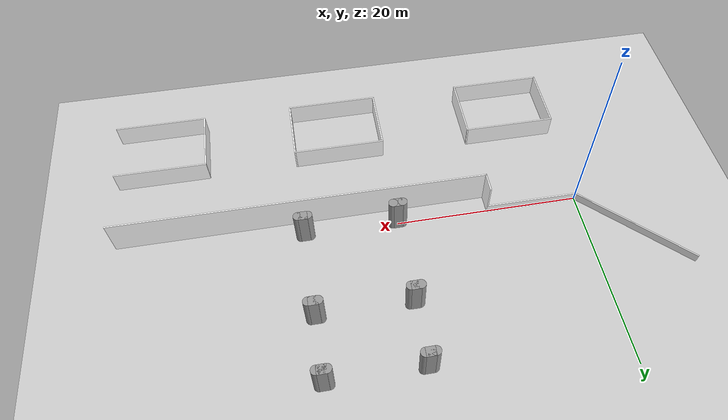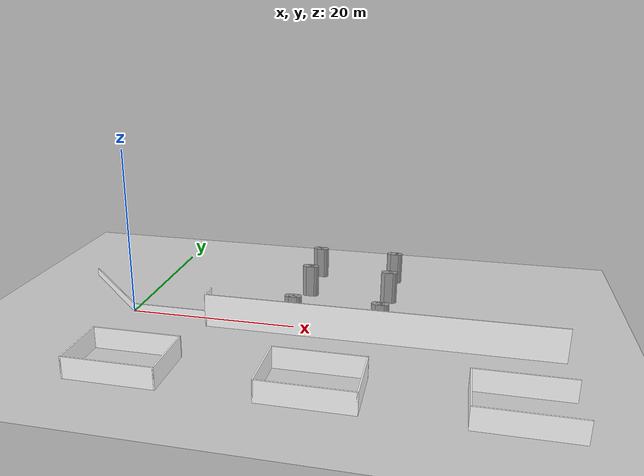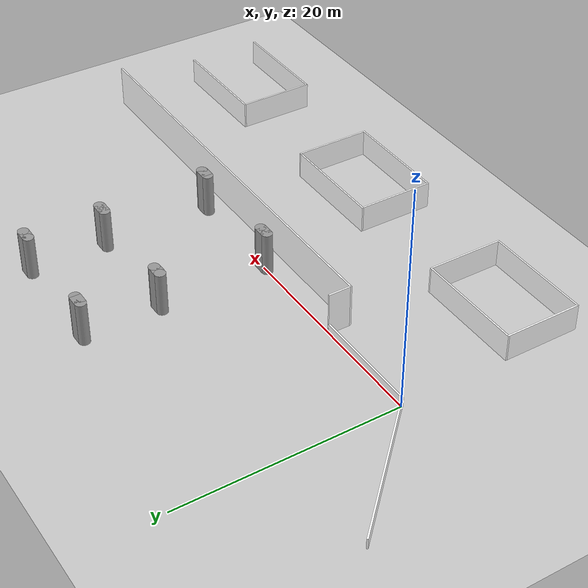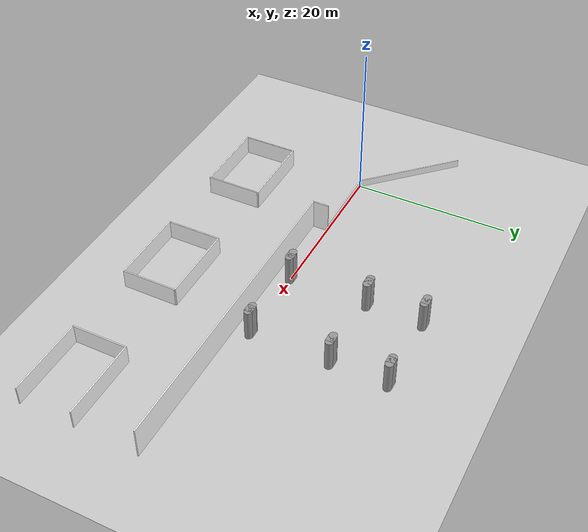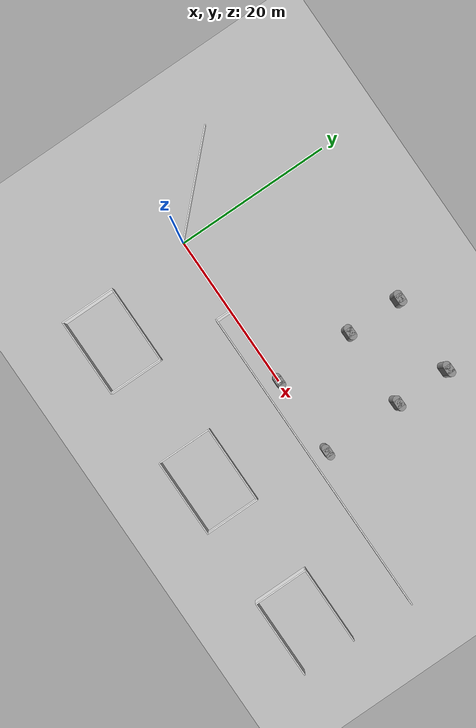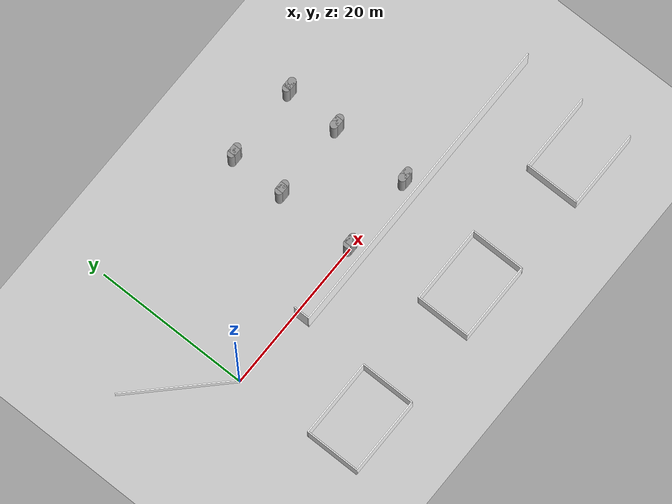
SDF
<sdf version="1.6">
 <world name="default">
  <model name="ground_plane">
   <static>1</static>
   <link name="link">
    <collision name="collision">
     <geometry><plane><normal>0 0 1</normal><size>100 100</size></plane></geometry>
     <surface><friction><ode><mu>100</mu><mu2>50</mu2></ode></friction></surface>
    </collision>
    <visual name="visual">
     <cast_shadows>0</cast_shadows>
     <geometry><plane><normal>0 0 1</normal><size>100 100</size></plane></geometry>
     <material>
      <script><uri>file://media/materials/scripts/gazebo.material</uri><name>Gazebo/Grey</name></script>
     </material>
    </visual>
   </link>
  </model>
  <model name="pillar_clone_6_clone_4">
   <link name="link_0">
    <inertial>
     <mass>1</mass>
     <inertia>
      <ixx>0.166667</ixx>
      <ixy>0</ixy>
      <ixz>0</ixz>
      <iyy>0.166667</iyy>
      <iyz>0</iyz>
      <izz>0.166667</izz>
     </inertia>
    </inertial>
    <kinematic>1</kinematic>
    <visual name="visual">
     <geometry><box><size>1 1 4</size></box></geometry>
     <material>
      <lighting>1</lighting>
      <script><uri>file://media/materials/scripts/gazebo.material</uri><name>Gazebo/Grey</name></script>
      <shader type="pixel"><normal_map>__default__</normal_map></shader>
      <ambient>0.3 0.3 0.3 1</ambient>
      <diffuse>0.7 0.7 0.7 1</diffuse>
      <specular>0.01 0.01 0.01 1</specular>
      <emissive>0 0 0 1</emissive>
     </material>
    </visual>
    <collision name="collision">
     <geometry><box><size>1 1 4</size></box></geometry>
     <surface>
      <friction>
       <ode><mu>1</mu><mu2>1</mu2><fdir1>0 0 0</fdir1><slip1>0</slip1><slip2>0</slip2></ode>
       <torsional>
        <coefficient>1</coefficient>
        <patch_radius>0</patch_radius>
        <surface_radius>0</surface_radius>
        <use_patch_radius>1</use_patch_radius>
        <ode><slip>0</slip></ode>
       </torsional>
      </friction>
      <bounce><restitution_coefficient>0</restitution_coefficient><threshold>1e+06</threshold></bounce>
      <contact>
       <collide_without_contact>0</collide_without_contact>
       <collide_without_contact_bitmask>1</collide_without_contact_bitmask>
       <collide_bitmask>1</collide_bitmask>
       <ode>
        <soft_cfm>0</soft_cfm>
        <soft_erp>0.2</soft_erp>
        <kp>1e+13</kp>
        <kd>1</kd>
        <max_vel>0.01</max_vel>
        <min_depth>0</min_depth>
       </ode>
       <bullet>
        <split_impulse>1</split_impulse>
        <split_impulse_penetration_threshold>-0.01</split_impulse_penetration_threshold>
        <soft_cfm>0</soft_cfm>
        <soft_erp>0.2</soft_erp>
        <kp>1e+13</kp>
        <kd>1</kd>
       </bullet>
      </contact>
     </surface>
    </collision>
   </link>
   <link name="link_1">
    <inertial>
     <mass>1</mass>
     <inertia><ixx>0.145833</ixx><ixy>0</ixy><ixz>0</ixz><iyy>0.145833</iyy><iyz>0</iyz><izz>0.125</izz></inertia>
    </inertial>
    <pose>-0.5 0 0 0 -0 0</pose>
    <kinematic>1</kinematic>
    <visual name="visual">
     <geometry><cylinder><radius>0.5</radius><length>4</length></cylinder></geometry>
     <material>
      <lighting>1</lighting>
      <script><uri>file://media/materials/scripts/gazebo.material</uri><name>Gazebo/Grey</name></script>
      <shader type="pixel"><normal_map>__default__</normal_map></shader>
      <ambient>0.3 0.3 0.3 1</ambient>
      <diffuse>0.7 0.7 0.7 1</diffuse>
      <specular>0.01 0.01 0.01 1</specular>
      <emissive>0 0 0 1</emissive>
     </material>
    </visual>
    <collision name="collision">
     <geometry><cylinder><radius>0.5</radius><length>4</length></cylinder></geometry>
     <surface>
      <friction>
       <ode><mu>1</mu><mu2>1</mu2><fdir1>0 0 0</fdir1><slip1>0</slip1><slip2>0</slip2></ode>
       <torsional>
        <coefficient>1</coefficient>
        <patch_radius>0</patch_radius>
        <surface_radius>0</surface_radius>
        <use_patch_radius>1</use_patch_radius>
        <ode><slip>0</slip></ode>
       </torsional>
      </friction>
      <bounce><restitution_coefficient>0</restitution_coefficient><threshold>1e+06</threshold></bounce>
      <contact>
       <collide_without_contact>0</collide_without_contact>
       <collide_without_contact_bitmask>1</collide_without_contact_bitmask>
       <collide_bitmask>1</collide_bitmask>
       <ode>
        <soft_cfm>0</soft_cfm>
        <soft_erp>0.2</soft_erp>
        <kp>1e+13</kp>
        <kd>1</kd>
        <max_vel>0.01</max_vel>
        <min_depth>0</min_depth>
       </ode>
       <bullet>
        <split_impulse>1</split_impulse>
        <split_impulse_penetration_threshold>-0.01</split_impulse_penetration_threshold>
        <soft_cfm>0</soft_cfm>
        <soft_erp>0.2</soft_erp>
        <kp>1e+13</kp>
        <kd>1</kd>
       </bullet>
      </contact>
     </surface>
    </collision>
   </link>
   <link name="link_2">
    <inertial>
     <mass>1</mass>
     <inertia><ixx>0.145833</ixx><ixy>0</ixy><ixz>0</ixz><iyy>0.145833</iyy><iyz>0</iyz><izz>0.125</izz></inertia>
    </inertial>
    <pose>0.5 0 0 0 -0 0</pose>
    <kinematic>1</kinematic>
    <visual name="visual">
     <geometry><cylinder><radius>0.5</radius><length>4</length></cylinder></geometry>
     <material>
      <lighting>1</lighting>
      <script><uri>file://media/materials/scripts/gazebo.material</uri><name>Gazebo/Grey</name></script>
      <shader type="pixel"><normal_map>__default__</normal_map></shader>
      <ambient>0.3 0.3 0.3 1</ambient>
      <diffuse>0.7 0.7 0.7 1</diffuse>
      <specular>0.01 0.01 0.01 1</specular>
      <emissive>0 0 0 1</emissive>
     </material>
    </visual>
    <collision name="collision">
     <geometry><cylinder><radius>0.5</radius><length>4</length></cylinder></geometry>
     <surface>
      <friction>
       <ode><mu>1</mu><mu2>1</mu2><fdir1>0 0 0</fdir1><slip1>0</slip1><slip2>0</slip2></ode>
       <torsional>
        <coefficient>1</coefficient>
        <patch_radius>0</patch_radius>
        <surface_radius>0</surface_radius>
        <use_patch_radius>1</use_patch_radius>
        <ode><slip>0</slip></ode>
       </torsional>
      </friction>
      <bounce><restitution_coefficient>0</restitution_coefficient><threshold>1e+06</threshold></bounce>
      <contact>
       <collide_without_contact>0</collide_without_contact>
       <collide_without_contact_bitmask>1</collide_without_contact_bitmask>
       <collide_bitmask>1</collide_bitmask>
       <ode>
        <soft_cfm>0</soft_cfm>
        <soft_erp>0.2</soft_erp>
        <kp>1e+13</kp>
        <kd>1</kd>
        <max_vel>0.01</max_vel>
        <min_depth>0</min_depth>
       </ode>
       <bullet>
        <split_impulse>1</split_impulse>
        <split_impulse_penetration_threshold>-0.01</split_impulse_penetration_threshold>
        <soft_cfm>0</soft_cfm>
        <soft_erp>0.2</soft_erp>
        <kp>1e+13</kp>
        <kd>1</kd>
       </bullet>
      </contact>
     </surface>
    </collision>
   </link>
   <static>1</static>
   <pose>20 0 2 0 -0 0</pose>
  </model>
  <model name="pillar_clone_6_clone_5">
   <link name="link_0">
    <inertial>
     <mass>1</mass>
     <inertia>
      <ixx>0.166667</ixx>
      <ixy>0</ixy>
      <ixz>0</ixz>
      <iyy>0.166667</iyy>
      <iyz>0</iyz>
      <izz>0.166667</izz>
     </inertia>
    </inertial>
    <kinematic>1</kinematic>
    <visual name="visual">
     <geometry><box><size>1 1 4</size></box></geometry>
     <material>
      <lighting>1</lighting>
      <script><uri>file://media/materials/scripts/gazebo.material</uri><name>Gazebo/Grey</name></script>
      <shader type="pixel"><normal_map>__default__</normal_map></shader>
      <ambient>0.3 0.3 0.3 1</ambient>
      <diffuse>0.7 0.7 0.7 1</diffuse>
      <specular>0.01 0.01 0.01 1</specular>
      <emissive>0 0 0 1</emissive>
     </material>
    </visual>
    <collision name="collision">
     <geometry><box><size>1 1 4</size></box></geometry>
     <surface>
      <friction>
       <ode><mu>1</mu><mu2>1</mu2><fdir1>0 0 0</fdir1><slip1>0</slip1><slip2>0</slip2></ode>
       <torsional>
        <coefficient>1</coefficient>
        <patch_radius>0</patch_radius>
        <surface_radius>0</surface_radius>
        <use_patch_radius>1</use_patch_radius>
        <ode><slip>0</slip></ode>
       </torsional>
      </friction>
      <bounce><restitution_coefficient>0</restitution_coefficient><threshold>1e+06</threshold></bounce>
      <contact>
       <collide_without_contact>0</collide_without_contact>
       <collide_without_contact_bitmask>1</collide_without_contact_bitmask>
       <collide_bitmask>1</collide_bitmask>
       <ode>
        <soft_cfm>0</soft_cfm>
        <soft_erp>0.2</soft_erp>
        <kp>1e+13</kp>
        <kd>1</kd>
        <max_vel>0.01</max_vel>
        <min_depth>0</min_depth>
       </ode>
       <bullet>
        <split_impulse>1</split_impulse>
        <split_impulse_penetration_threshold>-0.01</split_impulse_penetration_threshold>
        <soft_cfm>0</soft_cfm>
        <soft_erp>0.2</soft_erp>
        <kp>1e+13</kp>
        <kd>1</kd>
       </bullet>
      </contact>
     </surface>
    </collision>
   </link>
   <link name="link_1">
    <inertial>
     <mass>1</mass>
     <inertia><ixx>0.145833</ixx><ixy>0</ixy><ixz>0</ixz><iyy>0.145833</iyy><iyz>0</iyz><izz>0.125</izz></inertia>
    </inertial>
    <pose>-0.5 0 0 0 -0 0</pose>
    <kinematic>1</kinematic>
    <visual name="visual">
     <geometry><cylinder><radius>0.5</radius><length>4</length></cylinder></geometry>
     <material>
      <lighting>1</lighting>
      <script><uri>file://media/materials/scripts/gazebo.material</uri><name>Gazebo/Grey</name></script>
      <shader type="pixel"><normal_map>__default__</normal_map></shader>
      <ambient>0.3 0.3 0.3 1</ambient>
      <diffuse>0.7 0.7 0.7 1</diffuse>
      <specular>0.01 0.01 0.01 1</specular>
      <emissive>0 0 0 1</emissive>
     </material>
    </visual>
    <collision name="collision">
     <geometry><cylinder><radius>0.5</radius><length>4</length></cylinder></geometry>
     <surface>
      <friction>
       <ode><mu>1</mu><mu2>1</mu2><fdir1>0 0 0</fdir1><slip1>0</slip1><slip2>0</slip2></ode>
       <torsional>
        <coefficient>1</coefficient>
        <patch_radius>0</patch_radius>
        <surface_radius>0</surface_radius>
        <use_patch_radius>1</use_patch_radius>
        <ode><slip>0</slip></ode>
       </torsional>
      </friction>
      <bounce><restitution_coefficient>0</restitution_coefficient><threshold>1e+06</threshold></bounce>
      <contact>
       <collide_without_contact>0</collide_without_contact>
       <collide_without_contact_bitmask>1</collide_without_contact_bitmask>
       <collide_bitmask>1</collide_bitmask>
       <ode>
        <soft_cfm>0</soft_cfm>
        <soft_erp>0.2</soft_erp>
        <kp>1e+13</kp>
        <kd>1</kd>
        <max_vel>0.01</max_vel>
        <min_depth>0</min_depth>
       </ode>
       <bullet>
        <split_impulse>1</split_impulse>
        <split_impulse_penetration_threshold>-0.01</split_impulse_penetration_threshold>
        <soft_cfm>0</soft_cfm>
        <soft_erp>0.2</soft_erp>
        <kp>1e+13</kp>
        <kd>1</kd>
       </bullet>
      </contact>
     </surface>
    </collision>
   </link>
   <link name="link_2">
    <inertial>
     <mass>1</mass>
     <inertia><ixx>0.145833</ixx><ixy>0</ixy><ixz>0</ixz><iyy>0.145833</iyy><iyz>0</iyz><izz>0.125</izz></inertia>
    </inertial>
    <pose>0.5 0 0 0 -0 0</pose>
    <kinematic>1</kinematic>
    <visual name="visual">
     <geometry><cylinder><radius>0.5</radius><length>4</length></cylinder></geometry>
     <material>
      <lighting>1</lighting>
      <script><uri>file://media/materials/scripts/gazebo.material</uri><name>Gazebo/Grey</name></script>
      <shader type="pixel"><normal_map>__default__</normal_map></shader>
      <ambient>0.3 0.3 0.3 1</ambient>
      <diffuse>0.7 0.7 0.7 1</diffuse>
      <specular>0.01 0.01 0.01 1</specular>
      <emissive>0 0 0 1</emissive>
     </material>
    </visual>
    <collision name="collision">
     <geometry><cylinder><radius>0.5</radius><length>4</length></cylinder></geometry>
     <surface>
      <friction>
       <ode><mu>1</mu><mu2>1</mu2><fdir1>0 0 0</fdir1><slip1>0</slip1><slip2>0</slip2></ode>
       <torsional>
        <coefficient>1</coefficient>
        <patch_radius>0</patch_radius>
        <surface_radius>0</surface_radius>
        <use_patch_radius>1</use_patch_radius>
        <ode><slip>0</slip></ode>
       </torsional>
      </friction>
      <bounce><restitution_coefficient>0</restitution_coefficient><threshold>1e+06</threshold></bounce>
      <contact>
       <collide_without_contact>0</collide_without_contact>
       <collide_without_contact_bitmask>1</collide_without_contact_bitmask>
       <collide_bitmask>1</collide_bitmask>
       <ode>
        <soft_cfm>0</soft_cfm>
        <soft_erp>0.2</soft_erp>
        <kp>1e+13</kp>
        <kd>1</kd>
        <max_vel>0.01</max_vel>
        <min_depth>0</min_depth>
       </ode>
       <bullet>
        <split_impulse>1</split_impulse>
        <split_impulse_penetration_threshold>-0.01</split_impulse_penetration_threshold>
        <soft_cfm>0</soft_cfm>
        <soft_erp>0.2</soft_erp>
        <kp>1e+13</kp>
        <kd>1</kd>
       </bullet>
      </contact>
     </surface>
    </collision>
   </link>
   <static>1</static>
   <pose>30 0 2 0 -0 0</pose>
  </model>
  <model name="pillar_clone_6_clone_18">
   <link name="link_0">
    <inertial>
     <mass>1</mass>
     <inertia>
      <ixx>0.166667</ixx>
      <ixy>0</ixy>
      <ixz>0</ixz>
      <iyy>0.166667</iyy>
      <iyz>0</iyz>
      <izz>0.166667</izz>
     </inertia>
    </inertial>
    <kinematic>1</kinematic>
    <visual name="visual">
     <geometry><box><size>1 1 4</size></box></geometry>
     <material>
      <lighting>1</lighting>
      <script><uri>file://media/materials/scripts/gazebo.material</uri><name>Gazebo/Grey</name></script>
      <shader type="pixel"><normal_map>__default__</normal_map></shader>
      <ambient>0.3 0.3 0.3 1</ambient>
      <diffuse>0.7 0.7 0.7 1</diffuse>
      <specular>0.01 0.01 0.01 1</specular>
      <emissive>0 0 0 1</emissive>
     </material>
    </visual>
    <collision name="collision">
     <geometry><box><size>1 1 4</size></box></geometry>
     <surface>
      <friction>
       <ode><mu>1</mu><mu2>1</mu2><fdir1>0 0 0</fdir1><slip1>0</slip1><slip2>0</slip2></ode>
       <torsional>
        <coefficient>1</coefficient>
        <patch_radius>0</patch_radius>
        <surface_radius>0</surface_radius>
        <use_patch_radius>1</use_patch_radius>
        <ode><slip>0</slip></ode>
       </torsional>
      </friction>
      <bounce><restitution_coefficient>0</restitution_coefficient><threshold>1e+06</threshold></bounce>
      <contact>
       <collide_without_contact>0</collide_without_contact>
       <collide_without_contact_bitmask>1</collide_without_contact_bitmask>
       <collide_bitmask>1</collide_bitmask>
       <ode>
        <soft_cfm>0</soft_cfm>
        <soft_erp>0.2</soft_erp>
        <kp>1e+13</kp>
        <kd>1</kd>
        <max_vel>0.01</max_vel>
        <min_depth>0</min_depth>
       </ode>
       <bullet>
        <split_impulse>1</split_impulse>
        <split_impulse_penetration_threshold>-0.01</split_impulse_penetration_threshold>
        <soft_cfm>0</soft_cfm>
        <soft_erp>0.2</soft_erp>
        <kp>1e+13</kp>
        <kd>1</kd>
       </bullet>
      </contact>
     </surface>
    </collision>
   </link>
   <link name="link_1">
    <inertial>
     <mass>1</mass>
     <inertia><ixx>0.145833</ixx><ixy>0</ixy><ixz>0</ixz><iyy>0.145833</iyy><iyz>0</iyz><izz>0.125</izz></inertia>
    </inertial>
    <pose>-0.5 0 0 0 -0 0</pose>
    <kinematic>1</kinematic>
    <visual name="visual">
     <geometry><cylinder><radius>0.5</radius><length>4</length></cylinder></geometry>
     <material>
      <lighting>1</lighting>
      <script><uri>file://media/materials/scripts/gazebo.material</uri><name>Gazebo/Grey</name></script>
      <shader type="pixel"><normal_map>__default__</normal_map></shader>
      <ambient>0.3 0.3 0.3 1</ambient>
      <diffuse>0.7 0.7 0.7 1</diffuse>
      <specular>0.01 0.01 0.01 1</specular>
      <emissive>0 0 0 1</emissive>
     </material>
    </visual>
    <collision name="collision">
     <geometry><cylinder><radius>0.5</radius><length>4</length></cylinder></geometry>
     <surface>
      <friction>
       <ode><mu>1</mu><mu2>1</mu2><fdir1>0 0 0</fdir1><slip1>0</slip1><slip2>0</slip2></ode>
       <torsional>
        <coefficient>1</coefficient>
        <patch_radius>0</patch_radius>
        <surface_radius>0</surface_radius>
        <use_patch_radius>1</use_patch_radius>
        <ode><slip>0</slip></ode>
       </torsional>
      </friction>
      <bounce><restitution_coefficient>0</restitution_coefficient><threshold>1e+06</threshold></bounce>
      <contact>
       <collide_without_contact>0</collide_without_contact>
       <collide_without_contact_bitmask>1</collide_without_contact_bitmask>
       <collide_bitmask>1</collide_bitmask>
       <ode>
        <soft_cfm>0</soft_cfm>
        <soft_erp>0.2</soft_erp>
        <kp>1e+13</kp>
        <kd>1</kd>
        <max_vel>0.01</max_vel>
        <min_depth>0</min_depth>
       </ode>
       <bullet>
        <split_impulse>1</split_impulse>
        <split_impulse_penetration_threshold>-0.01</split_impulse_penetration_threshold>
        <soft_cfm>0</soft_cfm>
        <soft_erp>0.2</soft_erp>
        <kp>1e+13</kp>
        <kd>1</kd>
       </bullet>
      </contact>
     </surface>
    </collision>
   </link>
   <link name="link_2">
    <inertial>
     <mass>1</mass>
     <inertia><ixx>0.145833</ixx><ixy>0</ixy><ixz>0</ixz><iyy>0.145833</iyy><iyz>0</iyz><izz>0.125</izz></inertia>
    </inertial>
    <pose>0.5 0 0 0 -0 0</pose>
    <kinematic>1</kinematic>
    <visual name="visual">
     <geometry><cylinder><radius>0.5</radius><length>4</length></cylinder></geometry>
     <material>
      <lighting>1</lighting>
      <script><uri>file://media/materials/scripts/gazebo.material</uri><name>Gazebo/Grey</name></script>
      <shader type="pixel"><normal_map>__default__</normal_map></shader>
      <ambient>0.3 0.3 0.3 1</ambient>
      <diffuse>0.7 0.7 0.7 1</diffuse>
      <specular>0.01 0.01 0.01 1</specular>
      <emissive>0 0 0 1</emissive>
     </material>
    </visual>
    <collision name="collision">
     <geometry><cylinder><radius>0.5</radius><length>4</length></cylinder></geometry>
     <surface>
      <friction>
       <ode><mu>1</mu><mu2>1</mu2><fdir1>0 0 0</fdir1><slip1>0</slip1><slip2>0</slip2></ode>
       <torsional>
        <coefficient>1</coefficient>
        <patch_radius>0</patch_radius>
        <surface_radius>0</surface_radius>
        <use_patch_radius>1</use_patch_radius>
        <ode><slip>0</slip></ode>
       </torsional>
      </friction>
      <bounce><restitution_coefficient>0</restitution_coefficient><threshold>1e+06</threshold></bounce>
      <contact>
       <collide_without_contact>0</collide_without_contact>
       <collide_without_contact_bitmask>1</collide_without_contact_bitmask>
       <collide_bitmask>1</collide_bitmask>
       <ode>
        <soft_cfm>0</soft_cfm>
        <soft_erp>0.2</soft_erp>
        <kp>1e+13</kp>
        <kd>1</kd>
        <max_vel>0.01</max_vel>
        <min_depth>0</min_depth>
       </ode>
       <bullet>
        <split_impulse>1</split_impulse>
        <split_impulse_penetration_threshold>-0.01</split_impulse_penetration_threshold>
        <soft_cfm>0</soft_cfm>
        <soft_erp>0.2</soft_erp>
        <kp>1e+13</kp>
        <kd>1</kd>
       </bullet>
      </contact>
     </surface>
    </collision>
   </link>
   <static>1</static>
   <pose>20 10 2 0 -0 0</pose>
  </model>
  <model name="pillar_clone_6_clone_19">
   <link name="link_0">
    <inertial>
     <mass>1</mass>
     <inertia>
      <ixx>0.166667</ixx>
      <ixy>0</ixy>
      <ixz>0</ixz>
      <iyy>0.166667</iyy>
      <iyz>0</iyz>
      <izz>0.166667</izz>
     </inertia>
    </inertial>
    <kinematic>1</kinematic>
    <visual name="visual">
     <geometry><box><size>1 1 4</size></box></geometry>
     <material>
      <lighting>1</lighting>
      <script><uri>file://media/materials/scripts/gazebo.material</uri><name>Gazebo/Grey</name></script>
      <shader type="pixel"><normal_map>__default__</normal_map></shader>
      <ambient>0.3 0.3 0.3 1</ambient>
      <diffuse>0.7 0.7 0.7 1</diffuse>
      <specular>0.01 0.01 0.01 1</specular>
      <emissive>0 0 0 1</emissive>
     </material>
    </visual>
    <collision name="collision">
     <geometry><box><size>1 1 4</size></box></geometry>
     <surface>
      <friction>
       <ode><mu>1</mu><mu2>1</mu2><fdir1>0 0 0</fdir1><slip1>0</slip1><slip2>0</slip2></ode>
       <torsional>
        <coefficient>1</coefficient>
        <patch_radius>0</patch_radius>
        <surface_radius>0</surface_radius>
        <use_patch_radius>1</use_patch_radius>
        <ode><slip>0</slip></ode>
       </torsional>
      </friction>
      <bounce><restitution_coefficient>0</restitution_coefficient><threshold>1e+06</threshold></bounce>
      <contact>
       <collide_without_contact>0</collide_without_contact>
       <collide_without_contact_bitmask>1</collide_without_contact_bitmask>
       <collide_bitmask>1</collide_bitmask>
       <ode>
        <soft_cfm>0</soft_cfm>
        <soft_erp>0.2</soft_erp>
        <kp>1e+13</kp>
        <kd>1</kd>
        <max_vel>0.01</max_vel>
        <min_depth>0</min_depth>
       </ode>
       <bullet>
        <split_impulse>1</split_impulse>
        <split_impulse_penetration_threshold>-0.01</split_impulse_penetration_threshold>
        <soft_cfm>0</soft_cfm>
        <soft_erp>0.2</soft_erp>
        <kp>1e+13</kp>
        <kd>1</kd>
       </bullet>
      </contact>
     </surface>
    </collision>
   </link>
   <link name="link_1">
    <inertial>
     <mass>1</mass>
     <inertia><ixx>0.145833</ixx><ixy>0</ixy><ixz>0</ixz><iyy>0.145833</iyy><iyz>0</iyz><izz>0.125</izz></inertia>
    </inertial>
    <pose>-0.5 0 0 0 -0 0</pose>
    <kinematic>1</kinematic>
    <visual name="visual">
     <geometry><cylinder><radius>0.5</radius><length>4</length></cylinder></geometry>
     <material>
      <lighting>1</lighting>
      <script><uri>file://media/materials/scripts/gazebo.material</uri><name>Gazebo/Grey</name></script>
      <shader type="pixel"><normal_map>__default__</normal_map></shader>
      <ambient>0.3 0.3 0.3 1</ambient>
      <diffuse>0.7 0.7 0.7 1</diffuse>
      <specular>0.01 0.01 0.01 1</specular>
      <emissive>0 0 0 1</emissive>
     </material>
    </visual>
    <collision name="collision">
     <geometry><cylinder><radius>0.5</radius><length>4</length></cylinder></geometry>
     <surface>
      <friction>
       <ode><mu>1</mu><mu2>1</mu2><fdir1>0 0 0</fdir1><slip1>0</slip1><slip2>0</slip2></ode>
       <torsional>
        <coefficient>1</coefficient>
        <patch_radius>0</patch_radius>
        <surface_radius>0</surface_radius>
        <use_patch_radius>1</use_patch_radius>
        <ode><slip>0</slip></ode>
       </torsional>
      </friction>
      <bounce><restitution_coefficient>0</restitution_coefficient><threshold>1e+06</threshold></bounce>
      <contact>
       <collide_without_contact>0</collide_without_contact>
       <collide_without_contact_bitmask>1</collide_without_contact_bitmask>
       <collide_bitmask>1</collide_bitmask>
       <ode>
        <soft_cfm>0</soft_cfm>
        <soft_erp>0.2</soft_erp>
        <kp>1e+13</kp>
        <kd>1</kd>
        <max_vel>0.01</max_vel>
        <min_depth>0</min_depth>
       </ode>
       <bullet>
        <split_impulse>1</split_impulse>
        <split_impulse_penetration_threshold>-0.01</split_impulse_penetration_threshold>
        <soft_cfm>0</soft_cfm>
        <soft_erp>0.2</soft_erp>
        <kp>1e+13</kp>
        <kd>1</kd>
       </bullet>
      </contact>
     </surface>
    </collision>
   </link>
   <link name="link_2">
    <inertial>
     <mass>1</mass>
     <inertia><ixx>0.145833</ixx><ixy>0</ixy><ixz>0</ixz><iyy>0.145833</iyy><iyz>0</iyz><izz>0.125</izz></inertia>
    </inertial>
    <pose>0.5 0 0 0 -0 0</pose>
    <kinematic>1</kinematic>
    <visual name="visual">
     <geometry><cylinder><radius>0.5</radius><length>4</length></cylinder></geometry>
     <material>
      <lighting>1</lighting>
      <script><uri>file://media/materials/scripts/gazebo.material</uri><name>Gazebo/Grey</name></script>
      <shader type="pixel"><normal_map>__default__</normal_map></shader>
      <ambient>0.3 0.3 0.3 1</ambient>
      <diffuse>0.7 0.7 0.7 1</diffuse>
      <specular>0.01 0.01 0.01 1</specular>
      <emissive>0 0 0 1</emissive>
     </material>
    </visual>
    <collision name="collision">
     <geometry><cylinder><radius>0.5</radius><length>4</length></cylinder></geometry>
     <surface>
      <friction>
       <ode><mu>1</mu><mu2>1</mu2><fdir1>0 0 0</fdir1><slip1>0</slip1><slip2>0</slip2></ode>
       <torsional>
        <coefficient>1</coefficient>
        <patch_radius>0</patch_radius>
        <surface_radius>0</surface_radius>
        <use_patch_radius>1</use_patch_radius>
        <ode><slip>0</slip></ode>
       </torsional>
      </friction>
      <bounce><restitution_coefficient>0</restitution_coefficient><threshold>1e+06</threshold></bounce>
      <contact>
       <collide_without_contact>0</collide_without_contact>
       <collide_without_contact_bitmask>1</collide_without_contact_bitmask>
       <collide_bitmask>1</collide_bitmask>
       <ode>
        <soft_cfm>0</soft_cfm>
        <soft_erp>0.2</soft_erp>
        <kp>1e+13</kp>
        <kd>1</kd>
        <max_vel>0.01</max_vel>
        <min_depth>0</min_depth>
       </ode>
       <bullet>
        <split_impulse>1</split_impulse>
        <split_impulse_penetration_threshold>-0.01</split_impulse_penetration_threshold>
        <soft_cfm>0</soft_cfm>
        <soft_erp>0.2</soft_erp>
        <kp>1e+13</kp>
        <kd>1</kd>
       </bullet>
      </contact>
     </surface>
    </collision>
   </link>
   <static>1</static>
   <pose>30 10 2 0 -0 0</pose>
  </model>
  <model name="pillar_clone_6_clone_24">
   <link name="link_0">
    <inertial>
     <mass>1</mass>
     <inertia>
      <ixx>0.166667</ixx>
      <ixy>0</ixy>
      <ixz>0</ixz>
      <iyy>0.166667</iyy>
      <iyz>0</iyz>
      <izz>0.166667</izz>
     </inertia>
    </inertial>
    <kinematic>1</kinematic>
    <visual name="visual">
     <geometry><box><size>1 1 4</size></box></geometry>
     <material>
      <lighting>1</lighting>
      <script><uri>file://media/materials/scripts/gazebo.material</uri><name>Gazebo/Grey</name></script>
      <shader type="pixel"><normal_map>__default__</normal_map></shader>
      <ambient>0.3 0.3 0.3 1</ambient>
      <diffuse>0.7 0.7 0.7 1</diffuse>
      <specular>0.01 0.01 0.01 1</specular>
      <emissive>0 0 0 1</emissive>
     </material>
    </visual>
    <collision name="collision">
     <geometry><box><size>1 1 4</size></box></geometry>
     <surface>
      <friction>
       <ode><mu>1</mu><mu2>1</mu2><fdir1>0 0 0</fdir1><slip1>0</slip1><slip2>0</slip2></ode>
       <torsional>
        <coefficient>1</coefficient>
        <patch_radius>0</patch_radius>
        <surface_radius>0</surface_radius>
        <use_patch_radius>1</use_patch_radius>
        <ode><slip>0</slip></ode>
       </torsional>
      </friction>
      <bounce><restitution_coefficient>0</restitution_coefficient><threshold>1e+06</threshold></bounce>
      <contact>
       <collide_without_contact>0</collide_without_contact>
       <collide_without_contact_bitmask>1</collide_without_contact_bitmask>
       <collide_bitmask>1</collide_bitmask>
       <ode>
        <soft_cfm>0</soft_cfm>
        <soft_erp>0.2</soft_erp>
        <kp>1e+13</kp>
        <kd>1</kd>
        <max_vel>0.01</max_vel>
        <min_depth>0</min_depth>
       </ode>
       <bullet>
        <split_impulse>1</split_impulse>
        <split_impulse_penetration_threshold>-0.01</split_impulse_penetration_threshold>
        <soft_cfm>0</soft_cfm>
        <soft_erp>0.2</soft_erp>
        <kp>1e+13</kp>
        <kd>1</kd>
       </bullet>
      </contact>
     </surface>
    </collision>
   </link>
   <link name="link_1">
    <inertial>
     <mass>1</mass>
     <inertia><ixx>0.145833</ixx><ixy>0</ixy><ixz>0</ixz><iyy>0.145833</iyy><iyz>0</iyz><izz>0.125</izz></inertia>
    </inertial>
    <pose>-0.5 0 0 0 -0 0</pose>
    <kinematic>1</kinematic>
    <visual name="visual">
     <geometry><cylinder><radius>0.5</radius><length>4</length></cylinder></geometry>
     <material>
      <lighting>1</lighting>
      <script><uri>file://media/materials/scripts/gazebo.material</uri><name>Gazebo/Grey</name></script>
      <shader type="pixel"><normal_map>__default__</normal_map></shader>
      <ambient>0.3 0.3 0.3 1</ambient>
      <diffuse>0.7 0.7 0.7 1</diffuse>
      <specular>0.01 0.01 0.01 1</specular>
      <emissive>0 0 0 1</emissive>
     </material>
    </visual>
    <collision name="collision">
     <geometry><cylinder><radius>0.5</radius><length>4</length></cylinder></geometry>
     <surface>
      <friction>
       <ode><mu>1</mu><mu2>1</mu2><fdir1>0 0 0</fdir1><slip1>0</slip1><slip2>0</slip2></ode>
       <torsional>
        <coefficient>1</coefficient>
        <patch_radius>0</patch_radius>
        <surface_radius>0</surface_radius>
        <use_patch_radius>1</use_patch_radius>
        <ode><slip>0</slip></ode>
       </torsional>
      </friction>
      <bounce><restitution_coefficient>0</restitution_coefficient><threshold>1e+06</threshold></bounce>
      <contact>
       <collide_without_contact>0</collide_without_contact>
       <collide_without_contact_bitmask>1</collide_without_contact_bitmask>
       <collide_bitmask>1</collide_bitmask>
       <ode>
        <soft_cfm>0</soft_cfm>
        <soft_erp>0.2</soft_erp>
        <kp>1e+13</kp>
        <kd>1</kd>
        <max_vel>0.01</max_vel>
        <min_depth>0</min_depth>
       </ode>
       <bullet>
        <split_impulse>1</split_impulse>
        <split_impulse_penetration_threshold>-0.01</split_impulse_penetration_threshold>
        <soft_cfm>0</soft_cfm>
        <soft_erp>0.2</soft_erp>
        <kp>1e+13</kp>
        <kd>1</kd>
       </bullet>
      </contact>
     </surface>
    </collision>
   </link>
   <link name="link_2">
    <inertial>
     <mass>1</mass>
     <inertia><ixx>0.145833</ixx><ixy>0</ixy><ixz>0</ixz><iyy>0.145833</iyy><iyz>0</iyz><izz>0.125</izz></inertia>
    </inertial>
    <pose>0.5 0 0 0 -0 0</pose>
    <kinematic>1</kinematic>
    <visual name="visual">
     <geometry><cylinder><radius>0.5</radius><length>4</length></cylinder></geometry>
     <material>
      <lighting>1</lighting>
      <script><uri>file://media/materials/scripts/gazebo.material</uri><name>Gazebo/Grey</name></script>
      <shader type="pixel"><normal_map>__default__</normal_map></shader>
      <ambient>0.3 0.3 0.3 1</ambient>
      <diffuse>0.7 0.7 0.7 1</diffuse>
      <specular>0.01 0.01 0.01 1</specular>
      <emissive>0 0 0 1</emissive>
     </material>
    </visual>
    <collision name="collision">
     <geometry><cylinder><radius>0.5</radius><length>4</length></cylinder></geometry>
     <surface>
      <friction>
       <ode><mu>1</mu><mu2>1</mu2><fdir1>0 0 0</fdir1><slip1>0</slip1><slip2>0</slip2></ode>
       <torsional>
        <coefficient>1</coefficient>
        <patch_radius>0</patch_radius>
        <surface_radius>0</surface_radius>
        <use_patch_radius>1</use_patch_radius>
        <ode><slip>0</slip></ode>
       </torsional>
      </friction>
      <bounce><restitution_coefficient>0</restitution_coefficient><threshold>1e+06</threshold></bounce>
      <contact>
       <collide_without_contact>0</collide_without_contact>
       <collide_without_contact_bitmask>1</collide_without_contact_bitmask>
       <collide_bitmask>1</collide_bitmask>
       <ode>
        <soft_cfm>0</soft_cfm>
        <soft_erp>0.2</soft_erp>
        <kp>1e+13</kp>
        <kd>1</kd>
        <max_vel>0.01</max_vel>
        <min_depth>0</min_depth>
       </ode>
       <bullet>
        <split_impulse>1</split_impulse>
        <split_impulse_penetration_threshold>-0.01</split_impulse_penetration_threshold>
        <soft_cfm>0</soft_cfm>
        <soft_erp>0.2</soft_erp>
        <kp>1e+13</kp>
        <kd>1</kd>
       </bullet>
      </contact>
     </surface>
    </collision>
   </link>
   <static>1</static>
   <pose>20 17 2 0 -0 0</pose>
  </model>
  <model name="pillar_clone_6_clone_25">
   <link name="link_0">
    <inertial>
     <mass>1</mass>
     <inertia>
      <ixx>0.166667</ixx>
      <ixy>0</ixy>
      <ixz>0</ixz>
      <iyy>0.166667</iyy>
      <iyz>0</iyz>
      <izz>0.166667</izz>
     </inertia>
    </inertial>
    <kinematic>1</kinematic>
    <visual name="visual">
     <geometry><box><size>1 1 4</size></box></geometry>
     <material>
      <lighting>1</lighting>
      <script><uri>file://media/materials/scripts/gazebo.material</uri><name>Gazebo/Grey</name></script>
      <shader type="pixel"><normal_map>__default__</normal_map></shader>
      <ambient>0.3 0.3 0.3 1</ambient>
      <diffuse>0.7 0.7 0.7 1</diffuse>
      <specular>0.01 0.01 0.01 1</specular>
      <emissive>0 0 0 1</emissive>
     </material>
    </visual>
    <collision name="collision">
     <geometry><box><size>1 1 4</size></box></geometry>
     <surface>
      <friction>
       <ode><mu>1</mu><mu2>1</mu2><fdir1>0 0 0</fdir1><slip1>0</slip1><slip2>0</slip2></ode>
       <torsional>
        <coefficient>1</coefficient>
        <patch_radius>0</patch_radius>
        <surface_radius>0</surface_radius>
        <use_patch_radius>1</use_patch_radius>
        <ode><slip>0</slip></ode>
       </torsional>
      </friction>
      <bounce><restitution_coefficient>0</restitution_coefficient><threshold>1e+06</threshold></bounce>
      <contact>
       <collide_without_contact>0</collide_without_contact>
       <collide_without_contact_bitmask>1</collide_without_contact_bitmask>
       <collide_bitmask>1</collide_bitmask>
       <ode>
        <soft_cfm>0</soft_cfm>
        <soft_erp>0.2</soft_erp>
        <kp>1e+13</kp>
        <kd>1</kd>
        <max_vel>0.01</max_vel>
        <min_depth>0</min_depth>
       </ode>
       <bullet>
        <split_impulse>1</split_impulse>
        <split_impulse_penetration_threshold>-0.01</split_impulse_penetration_threshold>
        <soft_cfm>0</soft_cfm>
        <soft_erp>0.2</soft_erp>
        <kp>1e+13</kp>
        <kd>1</kd>
       </bullet>
      </contact>
     </surface>
    </collision>
   </link>
   <link name="link_1">
    <inertial>
     <mass>1</mass>
     <inertia><ixx>0.145833</ixx><ixy>0</ixy><ixz>0</ixz><iyy>0.145833</iyy><iyz>0</iyz><izz>0.125</izz></inertia>
    </inertial>
    <pose>-0.5 0 0 0 -0 0</pose>
    <kinematic>1</kinematic>
    <visual name="visual">
     <geometry><cylinder><radius>0.5</radius><length>4</length></cylinder></geometry>
     <material>
      <lighting>1</lighting>
      <script><uri>file://media/materials/scripts/gazebo.material</uri><name>Gazebo/Grey</name></script>
      <shader type="pixel"><normal_map>__default__</normal_map></shader>
      <ambient>0.3 0.3 0.3 1</ambient>
      <diffuse>0.7 0.7 0.7 1</diffuse>
      <specular>0.01 0.01 0.01 1</specular>
      <emissive>0 0 0 1</emissive>
     </material>
    </visual>
    <collision name="collision">
     <geometry><cylinder><radius>0.5</radius><length>4</length></cylinder></geometry>
     <surface>
      <friction>
       <ode><mu>1</mu><mu2>1</mu2><fdir1>0 0 0</fdir1><slip1>0</slip1><slip2>0</slip2></ode>
       <torsional>
        <coefficient>1</coefficient>
        <patch_radius>0</patch_radius>
        <surface_radius>0</surface_radius>
        <use_patch_radius>1</use_patch_radius>
        <ode><slip>0</slip></ode>
       </torsional>
      </friction>
      <bounce><restitution_coefficient>0</restitution_coefficient><threshold>1e+06</threshold></bounce>
      <contact>
       <collide_without_contact>0</collide_without_contact>
       <collide_without_contact_bitmask>1</collide_without_contact_bitmask>
       <collide_bitmask>1</collide_bitmask>
       <ode>
        <soft_cfm>0</soft_cfm>
        <soft_erp>0.2</soft_erp>
        <kp>1e+13</kp>
        <kd>1</kd>
        <max_vel>0.01</max_vel>
        <min_depth>0</min_depth>
       </ode>
       <bullet>
        <split_impulse>1</split_impulse>
        <split_impulse_penetration_threshold>-0.01</split_impulse_penetration_threshold>
        <soft_cfm>0</soft_cfm>
        <soft_erp>0.2</soft_erp>
        <kp>1e+13</kp>
        <kd>1</kd>
       </bullet>
      </contact>
     </surface>
    </collision>
   </link>
   <link name="link_2">
    <inertial>
     <mass>1</mass>
     <inertia><ixx>0.145833</ixx><ixy>0</ixy><ixz>0</ixz><iyy>0.145833</iyy><iyz>0</iyz><izz>0.125</izz></inertia>
    </inertial>
    <pose>0.5 0 0 0 -0 0</pose>
    <kinematic>1</kinematic>
    <visual name="visual">
     <geometry><cylinder><radius>0.5</radius><length>4</length></cylinder></geometry>
     <material>
      <lighting>1</lighting>
      <script><uri>file://media/materials/scripts/gazebo.material</uri><name>Gazebo/Grey</name></script>
      <shader type="pixel"><normal_map>__default__</normal_map></shader>
      <ambient>0.3 0.3 0.3 1</ambient>
      <diffuse>0.7 0.7 0.7 1</diffuse>
      <specular>0.01 0.01 0.01 1</specular>
      <emissive>0 0 0 1</emissive>
     </material>
    </visual>
    <collision name="collision">
     <geometry><cylinder><radius>0.5</radius><length>4</length></cylinder></geometry>
     <surface>
      <friction>
       <ode><mu>1</mu><mu2>1</mu2><fdir1>0 0 0</fdir1><slip1>0</slip1><slip2>0</slip2></ode>
       <torsional>
        <coefficient>1</coefficient>
        <patch_radius>0</patch_radius>
        <surface_radius>0</surface_radius>
        <use_patch_radius>1</use_patch_radius>
        <ode><slip>0</slip></ode>
       </torsional>
      </friction>
      <bounce><restitution_coefficient>0</restitution_coefficient><threshold>1e+06</threshold></bounce>
      <contact>
       <collide_without_contact>0</collide_without_contact>
       <collide_without_contact_bitmask>1</collide_without_contact_bitmask>
       <collide_bitmask>1</collide_bitmask>
       <ode>
        <soft_cfm>0</soft_cfm>
        <soft_erp>0.2</soft_erp>
        <kp>1e+13</kp>
        <kd>1</kd>
        <max_vel>0.01</max_vel>
        <min_depth>0</min_depth>
       </ode>
       <bullet>
        <split_impulse>1</split_impulse>
        <split_impulse_penetration_threshold>-0.01</split_impulse_penetration_threshold>
        <soft_cfm>0</soft_cfm>
        <soft_erp>0.2</soft_erp>
        <kp>1e+13</kp>
        <kd>1</kd>
       </bullet>
      </contact>
     </surface>
    </collision>
   </link>
   <static>1</static>
   <pose>30 17 2 0 -0 0</pose>
  </model>
  <model name="wall_others_2">
   <pose>19.9845 4.01553 0 0 -0 0</pose>
   <link name="Wall_23">
    <collision name="Wall_23_Collision">
     <geometry><box><size>14.2921 0.15 1</size></box></geometry>
     <pose>0 0 0.5 0 -0 0</pose>
    </collision>
    <visual name="Wall_23_Visual">
     <pose>0 0 0.5 0 -0 0</pose>
     <geometry><box><size>14.2921 0.15 1</size></box></geometry>
     <material>
      <script>
       <uri>file://media/materials/scripts/gray_tile_10.material</uri>
       <name>gray_tile_10/Diffuse</name>
      </script>
      <ambient>1 1 1 1</ambient>
     </material>
     <meta><layer>0</layer></meta>
    </visual>
    <pose>-24.9845 0.984467 0 0 -0 -0.785398</pose>
   </link>
   <link name="Wall_24">
    <collision name="Wall_24_Collision">
     <geometry><box><size>10.15 0.15 1</size></box></geometry>
     <pose>0 0 0.5 0 -0 0</pose>
    </collision>
    <visual name="Wall_24_Visual">
     <pose>0 0 0.5 0 -0 0</pose>
     <geometry><box><size>10.15 0.15 1</size></box></geometry>
     <material>
      <script>
       <uri>file://media/materials/scripts/gray_tile_10.material</uri>
       <name>gray_tile_10/Diffuse</name>
      </script>
      <ambient>1 1 1 1</ambient>
     </material>
     <meta><layer>0</layer></meta>
    </visual>
    <pose>-14.9845 -4.01553 0 0 -0 0</pose>
   </link>
   <link name="Wall_26">
    <collision name="Wall_26_Collision">
     <geometry><box><size>2.15 0.15 4</size></box></geometry>
     <pose>0 0 2 0 -0 0</pose>
    </collision>
    <visual name="Wall_26_Visual">
     <pose>0 0 2 0 -0 0</pose>
     <geometry><box><size>2.15 0.15 4</size></box></geometry>
     <material>
      <script>
       <uri>file://media/materials/scripts/gray_tile_10.material</uri>
       <name>gray_tile_10/Diffuse</name>
      </script>
      <ambient>1 1 1 1</ambient>
     </material>
     <meta><layer>0</layer></meta>
    </visual>
    <pose>-9.98447 -5.01553 0 0 -0 -1.5708</pose>
   </link>
   <link name="Wall_27">
    <collision name="Wall_27_Collision">
     <geometry><box><size>40.15 0.15 4</size></box></geometry>
     <pose>0 0 2 0 -0 0</pose>
    </collision>
    <visual name="Wall_27_Visual">
     <pose>0 0 2 0 -0 0</pose>
     <geometry><box><size>40.15 0.15 4</size></box></geometry>
     <material>
      <script>
       <uri>file://media/materials/scripts/gray_tile_10.material</uri>
       <name>gray_tile_10/Diffuse</name>
      </script>
      <ambient>1 1 1 1</ambient>
     </material>
     <meta><layer>0</layer></meta>
    </visual>
    <pose>10.0155 -6.01553 0 0 -0 0</pose>
   </link>
   <static>1</static>
  </model>
  <model name="wall_others_3">
   <pose>25 -8.5375 0 0 -0 0</pose>
   <link name="Wall_29">
    <collision name="Wall_29_Collision">
     <geometry><box><size>7.15 0.15 2.5</size></box></geometry>
     <pose>0 0 1.25 0 -0 0</pose>
    </collision>
    <visual name="Wall_29_Visual">
     <pose>0 0 1.25 0 -0 0</pose>
     <geometry><box><size>7.15 0.15 2.5</size></box></geometry>
     <material>
      <script>
       <uri>file://media/materials/scripts/gray_tile_10.material</uri>
       <name>gray_tile_10/Diffuse</name>
      </script>
      <ambient>1 1 1 1</ambient>
     </material>
     <meta><layer>0</layer></meta>
    </visual>
    <pose>-25 -4.9625 0 0 -0 -1.5708</pose>
   </link>
   <link name="Wall_30">
    <collision name="Wall_30_Collision">
     <geometry><box><size>10.15 0.15 2.5</size></box></geometry>
     <pose>0 0 1.25 0 -0 0</pose>
    </collision>
    <visual name="Wall_30_Visual">
     <pose>0 0 1.25 0 -0 0</pose>
     <geometry><box><size>10.15 0.15 2.5</size></box></geometry>
     <material>
      <script>
       <uri>file://media/materials/scripts/gray_tile_10.material</uri>
       <name>gray_tile_10/Diffuse</name>
      </script>
      <ambient>1 1 1 1</ambient>
     </material>
     <meta><layer>0</layer></meta>
    </visual>
    <pose>-20 -8.4625 0 0 -0 0</pose>
   </link>
   <link name="Wall_31">
    <collision name="Wall_31_Collision">
     <geometry><box><size>7.15 0.15 2.5</size></box></geometry>
     <pose>0 0 1.25 0 -0 0</pose>
    </collision>
    <visual name="Wall_31_Visual">
     <pose>0 0 1.25 0 -0 0</pose>
     <geometry><box><size>7.15 0.15 2.5</size></box></geometry>
     <material>
      <script>
       <uri>file://media/materials/scripts/gray_tile_10.material</uri>
       <name>gray_tile_10/Diffuse</name>
      </script>
      <ambient>1 1 1 1</ambient>
     </material>
     <meta><layer>0</layer></meta>
    </visual>
    <pose>-15 -4.9625 0 0 -0 1.5708</pose>
   </link>
   <link name="Wall_32">
    <collision name="Wall_32_Collision">
     <geometry><box><size>10.15 0.15 2.5</size></box></geometry>
     <pose>0 0 1.25 0 -0 0</pose>
    </collision>
    <visual name="Wall_32_Visual">
     <pose>0 0 1.25 0 -0 0</pose>
     <geometry><box><size>10.15 0.15 2.5</size></box></geometry>
     <material>
      <script>
       <uri>file://media/materials/scripts/gray_tile_10.material</uri>
       <name>gray_tile_10/Diffuse</name>
      </script>
      <ambient>1 1 1 1</ambient>
     </material>
     <meta><layer>0</layer></meta>
    </visual>
    <pose>-20 -1.4625 0 0 -0 3.14159</pose>
   </link>
   <link name="Wall_34">
    <collision name="Wall_34_Collision">
     <geometry><box><size>10.15 0.15 2.5</size></box></geometry>
     <pose>0 0 1.25 0 -0 0</pose>
    </collision>
    <visual name="Wall_34_Visual">
     <pose>0 0 1.25 0 -0 0</pose>
     <geometry><box><size>10.15 0.15 2.5</size></box></geometry>
     <material>
      <script>
       <uri>file://media/materials/scripts/gray_tile_10.material</uri>
       <name>gray_tile_10/Diffuse</name>
      </script>
      <ambient>1 1 1 1</ambient>
     </material>
     <meta><layer>0</layer></meta>
    </visual>
    <pose>-0 -8.4625 0 0 -0 0</pose>
   </link>
   <link name="Wall_35">
    <collision name="Wall_35_Collision">
     <geometry><box><size>7.15 0.15 2.5</size></box></geometry>
     <pose>0 0 1.25 0 -0 0</pose>
    </collision>
    <visual name="Wall_35_Visual">
     <pose>0 0 1.25 0 -0 0</pose>
     <geometry><box><size>7.15 0.15 2.5</size></box></geometry>
     <material>
      <script>
       <uri>file://media/materials/scripts/gray_tile_10.material</uri>
       <name>gray_tile_10/Diffuse</name>
      </script>
      <ambient>1 1 1 1</ambient>
     </material>
     <meta><layer>0</layer></meta>
    </visual>
    <pose>5 -4.9625 0 0 -0 1.5708</pose>
   </link>
   <link name="Wall_36">
    <collision name="Wall_36_Collision">
     <geometry><box><size>10.15 0.15 2.5</size></box></geometry>
     <pose>0 0 1.25 0 -0 0</pose>
    </collision>
    <visual name="Wall_36_Visual">
     <pose>0 0 1.25 0 -0 0</pose>
     <geometry><box><size>10.15 0.15 2.5</size></box></geometry>
     <material>
      <script>
       <uri>file://media/materials/scripts/gray_tile_10.material</uri>
       <name>gray_tile_10/Diffuse</name>
      </script>
      <ambient>1 1 1 1</ambient>
     </material>
     <meta><layer>0</layer></meta>
    </visual>
    <pose>-0 -1.4625 0 0 -0 3.14159</pose>
   </link>
   <link name="Wall_37">
    <collision name="Wall_37_Collision">
     <geometry><box><size>7.15 0.15 2.5</size></box></geometry>
     <pose>0 0 1.25 0 -0 0</pose>
    </collision>
    <visual name="Wall_37_Visual">
     <pose>0 0 1.25 0 -0 0</pose>
     <geometry><box><size>7.15 0.15 2.5</size></box></geometry>
     <material>
      <script>
       <uri>file://media/materials/scripts/gray_tile_10.material</uri>
       <name>gray_tile_10/Diffuse</name>
      </script>
      <ambient>1 1 1 1</ambient>
     </material>
     <meta><layer>0</layer></meta>
    </visual>
    <pose>-5 -4.9625 0 0 -0 -1.5708</pose>
   </link>
   <link name="Wall_39">
    <collision name="Wall_39_Collision">
     <geometry><box><size>7.15 0.15 2.5</size></box></geometry>
     <pose>0 0 1.25 0 -0 0</pose>
    </collision>
    <visual name="Wall_39_Visual">
     <pose>0 0 1.25 0 -0 0</pose>
     <geometry><box><size>7.15 0.15 2.5</size></box></geometry>
     <material>
      <script>
       <uri>file://media/materials/scripts/gray_tile_10.material</uri>
       <name>gray_tile_10/Diffuse</name>
      </script>
      <ambient>1 1 1 1</ambient>
     </material>
     <meta><layer>0</layer></meta>
    </visual>
    <pose>15 -4.9625 0 0 -0 -1.5708</pose>
   </link>
   <link name="Wall_40">
    <collision name="Wall_40_Collision">
     <geometry><box><size>10.15 0.15 2.5</size></box></geometry>
     <pose>0 0 1.25 0 -0 0</pose>
    </collision>
    <visual name="Wall_40_Visual">
     <pose>0 0 1.25 0 -0 0</pose>
     <geometry><box><size>10.15 0.15 2.5</size></box></geometry>
     <material>
      <script>
       <uri>file://media/materials/scripts/gray_tile_10.material</uri>
       <name>gray_tile_10/Diffuse</name>
      </script>
      <ambient>1 1 1 1</ambient>
     </material>
     <meta><layer>0</layer></meta>
    </visual>
    <pose>20 -8.4625 0 0 -0 0</pose>
   </link>
   <link name="Wall_42">
    <collision name="Wall_42_Collision">
     <geometry><box><size>10.15 0.15 2.5</size></box></geometry>
     <pose>0 0 1.25 0 -0 0</pose>
    </collision>
    <visual name="Wall_42_Visual">
     <pose>0 0 1.25 0 -0 0</pose>
     <geometry><box><size>10.15 0.15 2.5</size></box></geometry>
     <material>
      <script>
       <uri>file://media/materials/scripts/gray_tile_10.material</uri>
       <name>gray_tile_10/Diffuse</name>
      </script>
      <ambient>1 1 1 1</ambient>
     </material>
     <meta><layer>0</layer></meta>
    </visual>
    <pose>20 -1.4625 0 0 -0 3.14159</pose>
   </link>
   <static>1</static>
  </model>
 </world>
</sdf>
